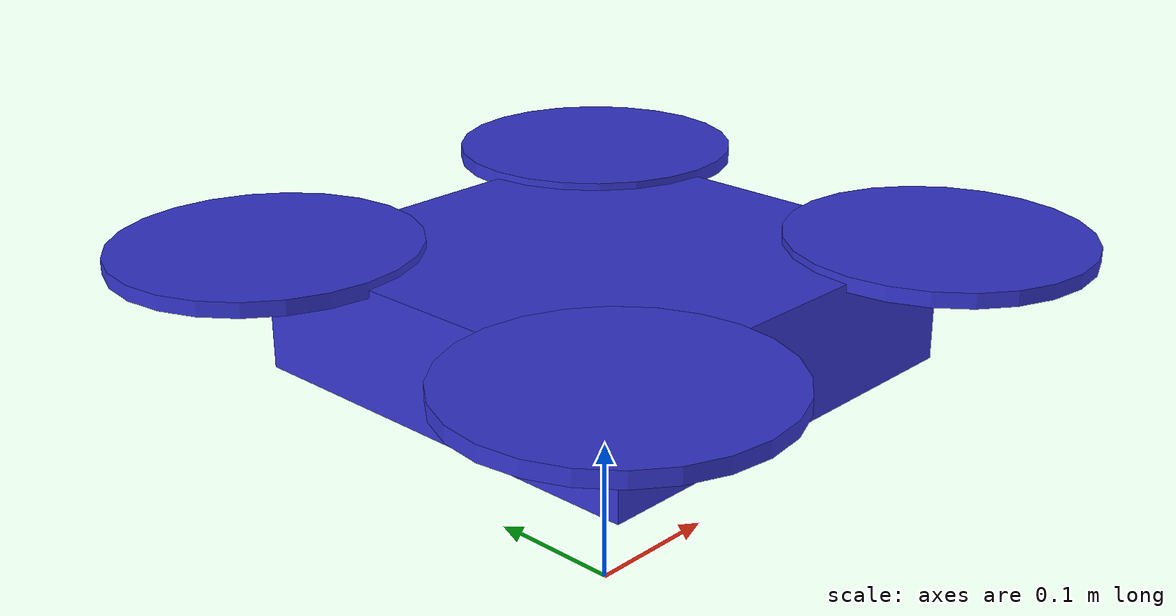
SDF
<?xml version='1.0'?>
<sdf version='1.8'>
    <model name="quadrotor">
        <pose>0 0 0.2 0 0 0</pose>

        <link name='base_link'>
            <inertial>
                <mass>1.5</mass>
                <pose>0 0 0 0 0 0</pose>
                <inertia>
                    <ixx>0.015</ixx>
                    <ixy>0</ixy>
                    <ixz>0</ixz>
                    <iyy>0.015</iyy>
                    <iyz>0</iyz>
                    <izz>0.03</izz>
                </inertia>
            </inertial>

            <visual name="body_visual">
                <geometry>
                    <box>
                        <size>0.3 0.3 0.08</size>
                    </box>
                </geometry>
                <material>
                    <ambient>0.1 0.1 0.1 1</ambient>
                    <diffuse>0.2 0.2 0.8 1</diffuse>
                </material>
            </visual>

            <collision name='body_collision'>
                <geometry>
                    <box>
                        <size>0.3 0.3 0.08</size>
                    </box>
                </geometry>
            </collision>
        </link>

        <link name='rotor_1'>
            <pose>0.15 -0.15 0.04 0 0 0</pose>
            <inertial>
                <mass>0.05</mass>
                <inertia>
                    <ixx>0.0001</ixx>
                    <ixy>0</ixy>
                    <ixz>0</ixz>
                    <iyy>0.0001</iyy>
                    <iyz>0</iyz>
                    <izz>0.0002</izz>
                </inertia>
            </inertial>

            <visual name="r1_visual">
                <geometry>
                    <cylinder>
                        <radius>0.1</radius>
                        <length>0.01</length>
                    </cylinder>
                </geometry>
                <material>
                    <ambient>0.1 0.1 0.1 1</ambient>
                    <diffuse>0.2 0.2 0.8 1</diffuse>
                </material>
            </visual>
        </link>

        <joint name='rotor_1_joint' type='revolute'>
            <parent>base_link</parent>
            <child>rotor_1</child>
            <axis>
                <xyz>0 0 1</xyz>
                <limit>
                    <lower>-1e16</lower>
                    <upper>1e16</upper>
                </limit>
            </axis>
        </joint>

        <link name='rotor_2'>
            <pose>0.15 0.15 0.04 0 0 0</pose>
            <inertial>
                <mass>0.05</mass>
                <inertia>
                    <ixx>0.0001</ixx>
                    <ixy>0</ixy>
                    <ixz>0</ixz>
                    <iyy>0.0001</iyy>
                    <iyz>0</iyz>
                    <izz>0.0002</izz>
                </inertia>
            </inertial>

            <visual name="r2_visual">
                <geometry>
                    <cylinder>
                        <radius>0.1</radius>
                        <length>0.01</length>
                    </cylinder>
                </geometry>
                <material>
                    <ambient>0.1 0.1 0.1 1</ambient>
                    <diffuse>0.2 0.2 0.8 1</diffuse>
                </material>
            </visual>
        </link>

        <joint name='rotor_2_joint' type='revolute'>
            <parent>base_link</parent>
            <child>rotor_2</child>
            <axis>
                <xyz>0 0 1</xyz>
                <limit>
                    <lower>-1e16</lower>
                    <upper>1e16</upper>
                </limit>
            </axis>
        </joint>

        <link name='rotor_3'>
            <pose>-0.15 0.15 0.04 0 0 0</pose>
            <inertial>
                <mass>0.05</mass>
                <inertia>
                    <ixx>0.0001</ixx>
                    <ixy>0</ixy>
                    <ixz>0</ixz>
                    <iyy>0.0001</iyy>
                    <iyz>0</iyz>
                    <izz>0.0002</izz>
                </inertia>
            </inertial>

            <visual name="r3_visual">
                <geometry>
                    <cylinder>
                        <radius>0.1</radius>
                        <length>0.01</length>
                    </cylinder>
                </geometry>
                <material>
                    <ambient>0.1 0.1 0.1 1</ambient>
                    <diffuse>0.2 0.2 0.8 1</diffuse>
                </material>
            </visual>
        </link>

        <joint name='rotor_3_joint' type='revolute'>
            <parent>base_link</parent>
            <child>rotor_3</child>
            <axis>
                <xyz>0 0 1</xyz>
                <limit>
                    <lower>-1e16</lower>
                    <upper>1e16</upper>
                </limit>
            </axis>
        </joint>

        <link name='rotor_4'>
            <pose>-0.15 -0.15 0.04 0 0 0</pose>
            <inertial>
                <mass>0.05</mass>
                <inertia>
                    <ixx>0.0001</ixx>
                    <ixy>0</ixy>
                    <ixz>0</ixz>
                    <iyy>0.0001</iyy>
                    <iyz>0</iyz>
                    <izz>0.0002</izz>
                </inertia>
            </inertial>

            <visual name="r4_visual">
                <geometry>
                    <cylinder>
                        <radius>0.1</radius>
                        <length>0.01</length>
                    </cylinder>
                </geometry>
                <material>
                    <ambient>0.1 0.1 0.1 1</ambient>
                    <diffuse>0.2 0.2 0.8 1</diffuse>
                </material>
            </visual>
        </link>

        <joint name='rotor_4_joint' type='revolute'>
            <parent>base_link</parent>
            <child>rotor_4</child>
            <axis>
                <xyz>0 0 1</xyz>
                <limit>
                    <lower>-1e16</lower>
                    <upper>1e16</upper>
                </limit>
            </axis>
        </joint>

        <plugin filename="gz-sim-multicopter-motor-model-system" name="gz::sim::systems::MulticopterMotorModel">
            <robotNamespace>quadrotor</robotNamespace>
            <jointName>rotor_1_joint</jointName>
            <linkName>rotor_1</linkName>
            <turningDirection>ccw</turningDirection>
            <timeConstantUp>0.0125</timeConstantUp>
            <timeConstantDown>0.025</timeConstantDown>
            <maxRotVelocity>800</maxRotVelocity>
            <motorConstant>8.548e-06</motorConstant>
            <momentConstant>0.016</momentConstant>
            <commandSubTopic>gazebo/command/motor_speed</commandSubTopic>
            <motorNumber>0</motorNumber>
        </plugin>

        <plugin filename="gz-sim-multicopter-motor-model-system" name="gz::sim::systems::MulticopterMotorModel">
            <robotNamespace>quadrotor</robotNamespace>
            <jointName>rotor_2_joint</jointName>
            <linkName>rotor_2</linkName>
            <turningDirection>cw</turningDirection>
            <timeConstantUp>0.0125</timeConstantUp>
            <timeConstantDown>0.025</timeConstantDown>
            <maxRotVelocity>800</maxRotVelocity>
            <motorConstant>8.548e-06</motorConstant>
            <momentConstant>0.016</momentConstant>
            <commandSubTopic>gazebo/command/motor_speed</commandSubTopic>
            <motorNumber>1</motorNumber>
        </plugin>

        <plugin filename="gz-sim-multicopter-motor-model-system" name="gz::sim::systems::MulticopterMotorModel">
            <robotNamespace>quadrotor</robotNamespace>
            <jointName>rotor_3_joint</jointName>
            <linkName>rotor_3</linkName>
            <turningDirection>ccw</turningDirection>
            <timeConstantUp>0.0125</timeConstantUp>
            <timeConstantDown>0.025</timeConstantDown>
            <maxRotVelocity>800</maxRotVelocity>
            <motorConstant>8.548e-06</motorConstant>
            <momentConstant>0.016</momentConstant>
            <commandSubTopic>gazebo/command/motor_speed</commandSubTopic>
            <motorNumber>2</motorNumber>
        </plugin>

        <plugin filename="gz-sim-multicopter-motor-model-system" name="gz::sim::systems::MulticopterMotorModel">
            <robotNamespace>quadrotor</robotNamespace>
            <jointName>rotor_4_joint</jointName>
            <linkName>rotor_4</linkName>
            <turningDirection>cw</turningDirection>
            <timeConstantUp>0.0125</timeConstantUp>
            <timeConstantDown>0.025</timeConstantDown>
            <maxRotVelocity>800</maxRotVelocity>
            <motorConstant>8.548e-06</motorConstant>
            <momentConstant>0.016</momentConstant>
            <commandSubTopic>gazebo/command/motor_speed</commandSubTopic>
            <motorNumber>3</motorNumber>
        </plugin>

        <plugin filename="gz-sim-multicopter-control-system" name="gz::sim::systems::MulticopterVelocityControl">
            <robotNamespace>quadrotor</robotNamespace>
            <commandSubTopic>cmd_vel</commandSubTopic>
            <comLinkName>base_link</comLinkName>

            <velocityGain>2.7 2.7 2.7</velocityGain>
            <attitudeGain>2.0 2.0 0.15</attitudeGain>
            <angularRateGain>0.4 0.5 0.0</angularRateGain>
            <maximumLinearVelocity>5 5 5</maximumLinearVelocity>
            <maximumAngularVelocity>0 0 2</maximumAngularVelocity>
            <rotorVelocitySlowdownSim>10</rotorVelocitySlowdownSim>

            <rotorConfiguration>
                <rotor>
                    <jointName>rotor_1_joint</jointName>
                    <forceConstant>8.548e-06</forceConstant>
                    <momentConstant>0.016</momentConstant>
                    <direction>1</direction>
                </rotor>
                <rotor>
                    <jointName>rotor_2_joint</jointName>
                    <forceConstant>8.548e-06</forceConstant>
                    <momentConstant>0.016</momentConstant>
                    <direction>-1</direction>
                </rotor>
                <rotor>
                    <jointName>rotor_3_joint</jointName>
                    <forceConstant>8.548e-06</forceConstant>
                    <momentConstant>0.016</momentConstant>
                    <direction>1</direction>
                </rotor>
                <rotor>
                    <jointName>rotor_4_joint</jointName>
                    <forceConstant>8.548e-06</forceConstant>
                    <momentConstant>0.016</momentConstant>
                    <direction>-1</direction>
                </rotor>
            </rotorConfiguration>
        </plugin>

        <plugin filename="gz-sim-odometry-publisher-system" name="gz::sim::systems::OdometryPublisher">
            <robotNamespace>quadrotor</robotNamespace>
            <odomFrame>world</odomFrame>
            <robotBaseFrame>base_link</robotBaseFrame>
            <odomPublishFrequency>50</odomPublishFrequency>
            <odomTopic>odom</odomTopic>
            <dimensions>3</dimensions>
        </plugin>

        <plugin filename="gz-sim-pose-publisher-system" name="gz::sim::systems::PosePublisher">
            <publish_model_pose>true</publish_model_pose>
            <publish_link_pose>true</publish_link_pose>
            <publish_sensor_pose>false</publish_sensor_pose>
            <publish_collision_pose>false</publish_collision_pose>
            <publish_visual_pose>false</publish_visual_pose>
            <update_frequency>50</update_frequency>
        </plugin>
    </model>
</sdf>
